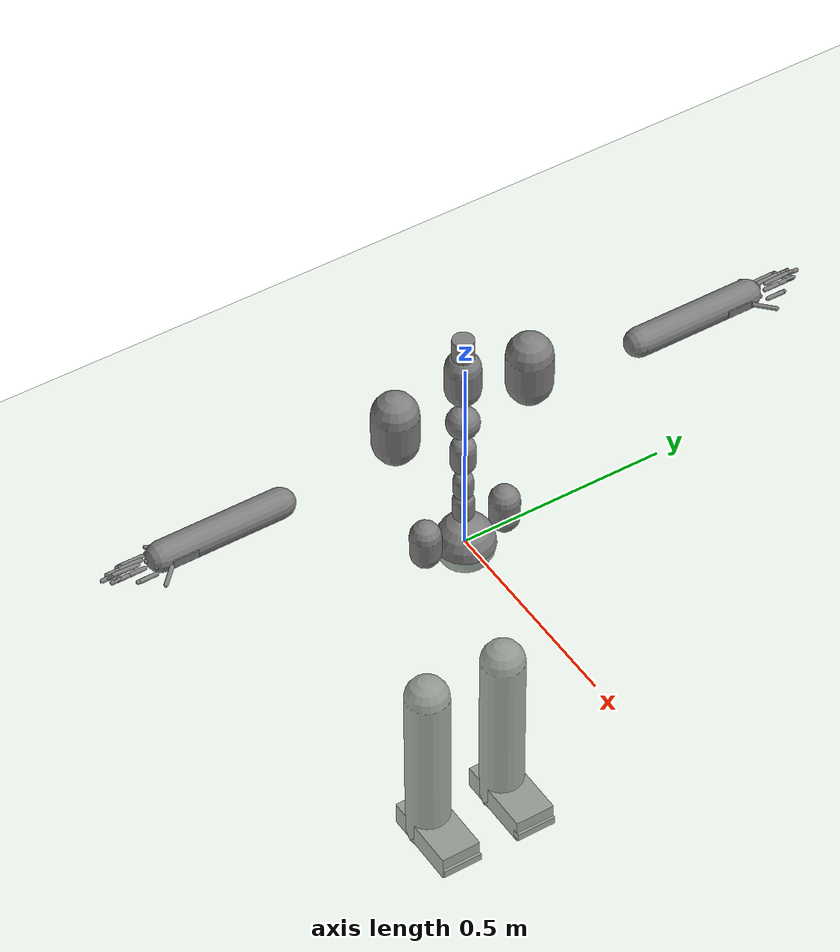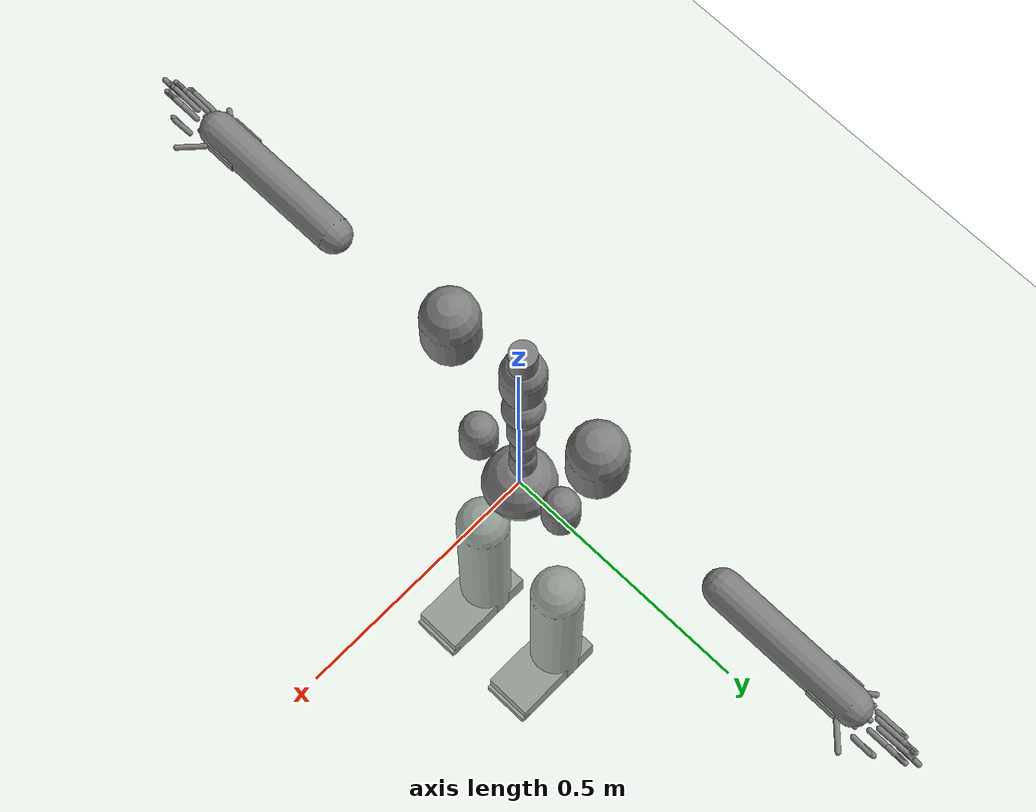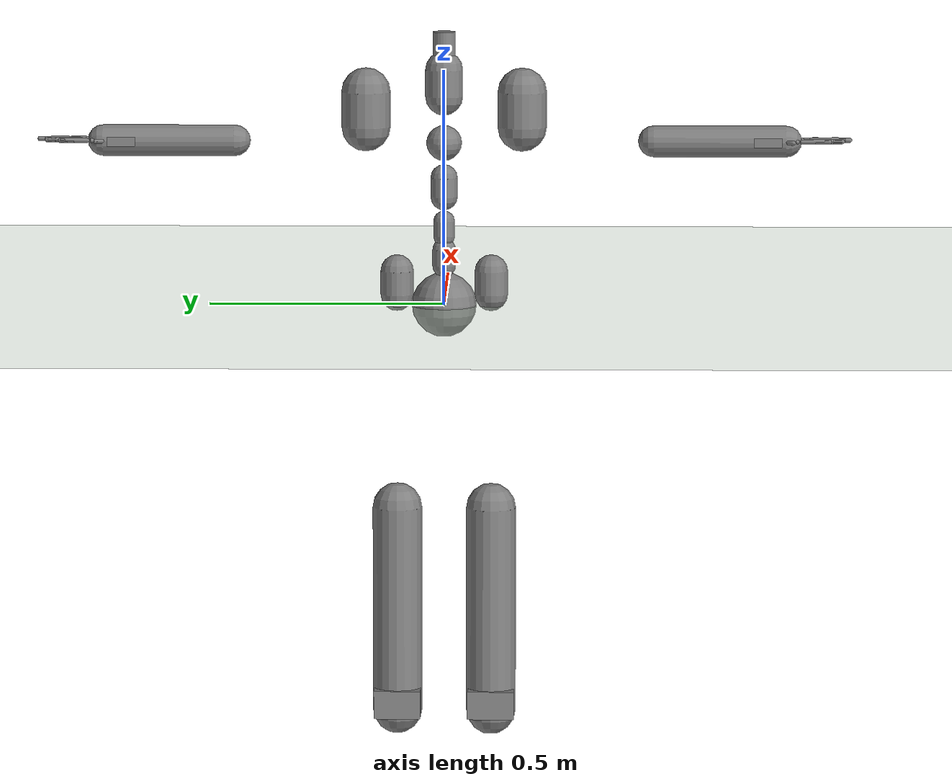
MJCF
<?xml version="1.0" ?>
<mujoco model="humanoid">
  <compiler coordinate="local"/>
  <statistic extent="2" center="0 0 1"/>
  <option timestep="0.00555"/>
  <default>
    <motor ctrlrange="-1 1" ctrllimited="true"/>
    <geom type="capsule" condim="1" friction="1.0 0.05 0.05" solimp=".9 .99 .003" solref=".015 1"/>
    <joint type="hinge" damping="0.1" stiffness="5" armature=".007" limited="true" solimplimit="0 .99 .01"/>
    <site size=".04" group="3"/>
  </default>
  <asset>
    <texture type="skybox" builtin="gradient" rgb1=".4 .5 .6" rgb2="0 0 0" width="100" height="100"/>
    <texture builtin="flat" height="1278" mark="cross" markrgb="1 1 1" name="texgeom" random="0.01" rgb1="0.8 0.6 0.4" rgb2="0.8 0.6 0.4" type="cube" width="127"/>
    <texture builtin="checker" height="100" name="texplane" rgb1="0 0 0" rgb2="0.8 0.8 0.8" type="2d" width="100"/>
    <material name="MatPlane" reflectance="0.5" shininess="1" specular="1" texrepeat="60 60" texture="texplane"/>
    <material name="geom" texture="texgeom" texuniform="true"/>
  </asset>
  <worldbody>
    <light cutoff="100" diffuse="1 1 1" dir="-0 0 -1.3" directional="true" exponent="1" pos="0 0 1.3" specular=".1 .1 .1"/>
    <geom conaffinity="1" condim="3" name="floor" pos="0 0 0" rgba="0.8 0.9 0.8 1" size="100 100 .2" type="plane" material="MatPlane"/>
    <body name="pHipOrigin" pos="0 0 0">
      <freejoint name="pHipOrigin"/>
      <geom type="sphere" contype="1" conaffinity="1" density="4629.6296296296305" size="0.06882" pos="0.0000 0.0000 -0.0000"/>
      <body name="jL5S1" pos="-0.00775529 0 0.06979742">
        <geom type="capsule" contype="1" conaffinity="1" density="1000" fromto="0 0 0.01405 0 0 0.04916" size="0.02458"/>
        <joint name="jL5S1_x" type="hinge" pos="0 0 0" axis="1 0 0" stiffness="500" damping="500" armature="0.02" range="-180.0000 180.0000"/>
        <joint name="jL5S1_y" type="hinge" pos="0 0 0" axis="0 1 0" stiffness="500" damping="500" armature="0.02" range="-180.0000 180.0000"/>
        <joint name="jL5S1_z" type="hinge" pos="0 0 0" axis="0 0 1" stiffness="500" damping="500" armature="0.02" range="-180.0000 180.0000"/>
        <body name="jL4L3" pos="0 0 0.06443585">
          <geom type="capsule" contype="1" conaffinity="1" density="1000" fromto="0 0 0.01289 0 0 0.04511" size="0.02255"/>
          <joint name="jL4L3_x" type="hinge" pos="0 0 0" axis="1 0 0" stiffness="500" damping="500" armature="0.02" range="-180.0000 180.0000"/>
          <joint name="jL4L3_y" type="hinge" pos="0 0 0" axis="0 1 0" stiffness="500" damping="500" armature="0.02" range="-180.0000 180.0000"/>
          <joint name="jL4L3_z" type="hinge" pos="0 0 0" axis="0 0 1" stiffness="500" damping="500" armature="0.02" range="-180.0000 180.0000"/>
          <body name="jL1T12" pos="-0.00062802 0 0.08140251">
            <geom type="capsule" contype="1" conaffinity="1" density="1000" fromto="0 0 0.01628 0 0 0.05698" size="0.02849"/>
            <joint name="jL1T12_x" type="hinge" pos="0 0 0" axis="1 0 0" stiffness="500" damping="500" armature="0.02" range="-180.0000 180.0000"/>
            <joint name="jL1T12_y" type="hinge" pos="0 0 0" axis="0 1 0" stiffness="500" damping="500" armature="0.02" range="-180.0000 180.0000"/>
            <joint name="jL1T12_z" type="hinge" pos="0 0 0" axis="0 0 1" stiffness="500" damping="500" armature="0.02" range="-180.0000 180.0000"/>
            <body name="jT9T8" pos="-0.00072556 0 0.09386295">
              <geom type="sphere" contype="1" conaffinity="1" density="1000" size="0.03755" pos="0.000 0.0000 0.037546"/>
              <joint name="jT9T8_x" type="hinge" pos="0 0 0" axis="1 0 0" stiffness="500" damping="500" armature="0.02" range="-180.0000 180.0000"/>
              <joint name="jT9T8_y" type="hinge" pos="0 0 0" axis="0 1 0" stiffness="500" damping="500" armature="0.02" range="-180.0000 180.0000"/>
              <joint name="jT9T8_z" type="hinge" pos="0 0 0" axis="0 0 1" stiffness="500" damping="500" armature="0.02" range="-180.0000 180.0000"/>
              <body name="jT1C7" pos="0 0 0.11363700">
                <geom type="capsule" contype="1" conaffinity="1" density="1000" fromto="0 0 0.02273 0 0 0.07955" size="0.03977"/>
                <joint name="jT1C7_x" type="hinge" pos="0 0 0" axis="1 0 0" stiffness="500" damping="500" armature="0.02" range="-180.0000 180.0000"/>
                <joint name="jT1C7_y" type="hinge" pos="0 0 0" axis="0 1 0" stiffness="500" damping="500" armature="0.02" range="-180.0000 180.0000"/>
                <joint name="jT1C7_z" type="hinge" pos="0 0 0" axis="0 0 1" stiffness="500" damping="500" armature="0.02" range="-180.0000 180.0000"/>
                <body name="jC1Head" pos="0.00094772 0 0.08033117">
                  <geom type="cylinder" contype="1" conaffinity="1" density="1000" fromto="0 0 0 0 0 0.08034" size="0.02410"/>
                  <joint name="jC1Head_x" type="hinge" pos="0 0 0" axis="1 0 0" stiffness="500" damping="500" armature="0.02" range="-180.0000 180.0000"/>
                  <joint name="jC1Head_y" type="hinge" pos="0 0 0" axis="0 1 0" stiffness="500" damping="500" armature="0.02" range="-180.0000 180.0000"/>
                  <joint name="jC1Head_z" type="hinge" pos="0 0 0" axis="0 0 1" stiffness="500" damping="500" armature="0.02" range="-180.0000 180.0000"/>
                </body>
              </body>
              <body name="jRightT4Shoulder" pos="0 -0.01725653 0.04207522">
                <geom type="sphere" contype="1" conaffinity="1" density="1000" size="0.01819" pos="0 0 0"/>
                <joint name="jRightT4Shoulder_x" type="hinge" pos="0 0 0" axis="1 0 0" stiffness="500" damping="500" armature="0.02" range="-180.0000 180.0000"/>
                <joint name="jRightT4Shoulder_y" type="hinge" pos="0 0 0" axis="0 1 0" stiffness="500" damping="500" armature="0.02" range="-180.0000 180.0000"/>
                <joint name="jRightT4Shoulder_z" type="hinge" pos="0 0 0" axis="0 0 1" stiffness="500" damping="500" armature="0.02" range="-180.0000 180.0000"/>
                <body name="jRightShoulder" pos="0 -0.14852068 0">
                  <geom type="capsule" contype="1" conaffinity="1" density="1000" fromto="0 0 0.02970 0 0 0.10396" size="0.05198"/>
                  <joint name="jRightShoulder_x" type="hinge" pos="0 0 0" axis="1 0 0" stiffness="500" damping="500" armature="0.02" range="-180.0000 180.0000"/>
                  <joint name="jRightShoulder_y" type="hinge" pos="0 0 0" axis="0 1 0" stiffness="500" damping="500" armature="0.02" range="-180.0000 180.0000"/>
                  <joint name="jRightShoulder_z" type="hinge" pos="0 0 0" axis="0 0 1" stiffness="500" damping="500" armature="0.02" range="-180.0000 180.0000"/>
                  <body name="jRightElbow" pos="0 -0.28001967 0">
                    <geom type="capsule" contype="1" conaffinity="1" density="1000" fromto="0 0 0 0.00000000 -0.28001967 0.00000000" size="0.03360"/>
                    <joint name="jRightElbow_x" type="hinge" pos="0 0 0" axis="1 0 0" stiffness="500" damping="500" armature="0.02" range="-180.0000 180.0000"/>
                    <joint name="jRightElbow_y" type="hinge" pos="0 0 0" axis="0 1 0" stiffness="500" damping="500" armature="0.02" range="-180.0000 180.0000"/>
                    <joint name="jRightElbow_z" type="hinge" pos="0 0 0" axis="0 0 1" stiffness="500" damping="500" armature="0.02" range="-180.0000 180.0000"/>
                    <body name="jRightWrist" pos="0.00009688 -0.24071392 0">
                      <geom density="1000" type="box" pos="0 0 0" size="0.035 0.03 0.01" quat="1.0000 0.0000 0.0000 0.0000"/>
                      <joint name="jRightWrist_x" type="hinge" pos="0 0 0" axis="1 0 0" stiffness="500" damping="500" armature="0.02" range="-180.0000 180.0000"/>
                      <joint name="jRightWrist_y" type="hinge" pos="0 0 0" axis="0 1 0" stiffness="500" damping="500" armature="0.02" range="-180.0000 180.0000"/>
                      <joint name="jRightWrist_z" type="hinge" pos="0 0 0" axis="0 0 1" stiffness="500" damping="500" armature="0.02" range="-180.0000 180.0000"/>
                      <body name="jRightFirstCMC" pos="0.03610712 -0.03461070 -0.00163515">
                        <geom type="capsule" contype="1" conaffinity="1" density="1000" fromto="0 0 0 0.03610712 -0.03461070 -0.00163515" size="0.005"/>
                        <joint name="jRightFirstCMC_x" type="hinge" pos="0 0 0" axis="1 0 0" stiffness="500" damping="500" armature="0.02" range="-180.0000 180.0000"/>
                        <joint name="jRightFirstCMC_y" type="hinge" pos="0 0 0" axis="0 1 0" stiffness="500" damping="500" armature="0.02" range="-180.0000 180.0000"/>
                        <joint name="jRightFirstCMC_z" type="hinge" pos="0 0 0" axis="0 0 1" stiffness="500" damping="500" armature="0.02" range="-180.0000 180.0000"/>
                        <body name="jRightFirstMCP" pos="0.00129353 -0.03650270 0.00077130">
                          <geom type="capsule" contype="1" conaffinity="1" density="1000" fromto="0 0 0 0.00129353 -0.03650270 0.00077130" size="0.005"/>
                          <joint name="jRightFirstMCP_x" type="hinge" pos="0 0 0" axis="1 0 0" stiffness="500" damping="500" armature="0.02" range="-180.0000 180.0000"/>
                          <joint name="jRightFirstMCP_y" type="hinge" pos="0 0 0" axis="0 1 0" stiffness="500" damping="500" armature="0.02" range="-180.0000 180.0000"/>
                          <joint name="jRightFirstMCP_z" type="hinge" pos="0 0 0" axis="0 0 1" stiffness="500" damping="500" armature="0.02" range="-180.0000 180.0000"/>
                          <body name="jRightIP" pos="0 -0.02113471 0">
                            <geom type="capsule" contype="1" conaffinity="1" density="1000" fromto="0 0 0 0.00000000 -0.02113471 0.00000000" size="0.005"/>
                            <joint name="jRightIP_x" type="hinge" pos="0 0 0" axis="1 0 0" stiffness="500" damping="500" armature="0.02" range="-180.0000 180.0000"/>
                            <joint name="jRightIP_y" type="hinge" pos="0 0 0" axis="0 1 0" stiffness="500" damping="500" armature="0.02" range="-180.0000 180.0000"/>
                            <joint name="jRightIP_z" type="hinge" pos="0 0 0" axis="0 0 1" stiffness="500" damping="500" armature="0.02" range="-180.0000 180.0000"/>
                          </body>
                        </body>
                      </body>
                      <body name="jRightSecondCMC" pos="0.01064093 -0.03108943 -0.00054228">
                        <geom type="capsule" contype="1" conaffinity="1" density="1000" fromto="0 0 0 0.01064093 -0.03108943 -0.00054228" size="0.005"/>
                        <joint name="jRightSecondCMC_x" type="hinge" pos="0 0 0" axis="1 0 0" stiffness="500" damping="500" armature="0.02" range="-180.0000 180.0000"/>
                        <joint name="jRightSecondCMC_y" type="hinge" pos="0 0 0" axis="0 1 0" stiffness="500" damping="500" armature="0.02" range="-180.0000 180.0000"/>
                        <joint name="jRightSecondCMC_z" type="hinge" pos="0 0 0" axis="0 0 1" stiffness="500" damping="500" armature="0.02" range="-180.0000 180.0000"/>
                        <body name="jRightSecondMCP" pos="-0.00032480 -0.05180347 -0.00053737">
                          <geom type="capsule" contype="1" conaffinity="1" density="1000" fromto="0 0 0 -0.00032480 -0.05180347 -0.00053737" size="0.005"/>
                          <joint name="jRightSecondMCP_x" type="hinge" pos="0 0 0" axis="1 0 0" stiffness="500" damping="500" armature="0.02" range="-180.0000 180.0000"/>
                          <joint name="jRightSecondMCP_y" type="hinge" pos="0 0 0" axis="0 1 0" stiffness="500" damping="500" armature="0.02" range="-180.0000 180.0000"/>
                          <joint name="jRightSecondMCP_z" type="hinge" pos="0 0 0" axis="0 0 1" stiffness="500" damping="500" armature="0.02" range="-180.0000 180.0000"/>
                          <body name="jRightSecondPIP" pos="0 -0.03741081 0">
                            <geom type="capsule" contype="1" conaffinity="1" density="1000" fromto="0 0 0 0.00000000 -0.03741081 0.00000000" size="0.005"/>
                            <joint name="jRightSecondPIP_x" type="hinge" pos="0 0 0" axis="1 0 0" stiffness="500" damping="500" armature="0.02" range="-180.0000 180.0000"/>
                            <joint name="jRightSecondPIP_y" type="hinge" pos="0 0 0" axis="0 1 0" stiffness="500" damping="500" armature="0.02" range="-180.0000 180.0000"/>
                            <joint name="jRightSecondPIP_z" type="hinge" pos="0 0 0" axis="0 0 1" stiffness="500" damping="500" armature="0.02" range="-180.0000 180.0000"/>
                            <body name="jRightSecondDIP" pos="0 -0.01784215 0">
                              <geom type="capsule" contype="1" conaffinity="1" density="1000" fromto="0 0 0 0.00000000 -0.01784215 0.00000000" size="0.005"/>
                              <joint name="jRightSecondDIP_x" type="hinge" pos="0 0 0" axis="1 0 0" stiffness="500" damping="500" armature="0.02" range="-180.0000 180.0000"/>
                              <joint name="jRightSecondDIP_y" type="hinge" pos="0 0 0" axis="0 1 0" stiffness="500" damping="500" armature="0.02" range="-180.0000 180.0000"/>
                              <joint name="jRightSecondDIP_z" type="hinge" pos="0 0 0" axis="0 0 1" stiffness="500" damping="500" armature="0.02" range="-180.0000 180.0000"/>
                            </body>
                          </body>
                        </body>
                      </body>
                      <body name="jRightThirdCMC" pos="-0.00067498 -0.03650114 0.00153456">
                        <geom type="capsule" contype="1" conaffinity="1" density="1000" fromto="0 0 0 -0.00067498 -0.03650114 0.00153456" size="0.005"/>
                        <joint name="jRightThirdCMC_x" type="hinge" pos="0 0 0" axis="1 0 0" stiffness="500" damping="500" armature="0.02" range="-180.0000 180.0000"/>
                        <joint name="jRightThirdCMC_y" type="hinge" pos="0 0 0" axis="0 1 0" stiffness="500" damping="500" armature="0.02" range="-180.0000 180.0000"/>
                        <joint name="jRightThirdCMC_z" type="hinge" pos="0 0 0" axis="0 0 1" stiffness="500" damping="500" armature="0.02" range="-180.0000 180.0000"/>
                        <body name="jRightThirdMCP" pos="-0.00067462 -0.05589217 0.00152061">
                          <geom type="capsule" contype="1" conaffinity="1" density="1000" fromto="0 0 0 -0.00067462 -0.05589217 0.00152061" size="0.005"/>
                          <joint name="jRightThirdMCP_x" type="hinge" pos="0 0 0" axis="1 0 0" stiffness="500" damping="500" armature="0.02" range="-180.0000 180.0000"/>
                          <joint name="jRightThirdMCP_y" type="hinge" pos="0 0 0" axis="0 1 0" stiffness="500" damping="500" armature="0.02" range="-180.0000 180.0000"/>
                          <joint name="jRightThirdMCP_z" type="hinge" pos="0 0 0" axis="0 0 1" stiffness="500" damping="500" armature="0.02" range="-180.0000 180.0000"/>
                          <body name="jRightThirdPIP" pos="0 -0.04103011 0">
                            <geom type="capsule" contype="1" conaffinity="1" density="1000" fromto="0 0 0 0.00000000 -0.04103011 0.00000000" size="0.005"/>
                            <joint name="jRightThirdPIP_x" type="hinge" pos="0 0 0" axis="1 0 0" stiffness="500" damping="500" armature="0.02" range="-180.0000 180.0000"/>
                            <joint name="jRightThirdPIP_y" type="hinge" pos="0 0 0" axis="0 1 0" stiffness="500" damping="500" armature="0.02" range="-180.0000 180.0000"/>
                            <joint name="jRightThirdPIP_z" type="hinge" pos="0 0 0" axis="0 0 1" stiffness="500" damping="500" armature="0.02" range="-180.0000 180.0000"/>
                            <body name="jRightThirdDIP" pos="0 -0.01556256 0">
                              <geom type="capsule" contype="1" conaffinity="1" density="1000" fromto="0 0 0 0.00000000 -0.01556256 0.00000000" size="0.005"/>
                              <joint name="jRightThirdDIP_x" type="hinge" pos="0 0 0" axis="1 0 0" stiffness="500" damping="500" armature="0.02" range="-180.0000 180.0000"/>
                              <joint name="jRightThirdDIP_y" type="hinge" pos="0 0 0" axis="0 1 0" stiffness="500" damping="500" armature="0.02" range="-180.0000 180.0000"/>
                              <joint name="jRightThirdDIP_z" type="hinge" pos="0 0 0" axis="0 0 1" stiffness="500" damping="500" armature="0.02" range="-180.0000 180.0000"/>
                            </body>
                          </body>
                        </body>
                      </body>
                      <body name="jRightFourthCMC" pos="-0.01114441 -0.03103902 0.00073061">
                        <geom type="capsule" contype="1" conaffinity="1" density="1000" fromto="0 0 0 -0.01114441 -0.03103902 0.00073061" size="0.005"/>
                        <joint name="jRightFourthCMC_x" type="hinge" pos="0 0 0" axis="1 0 0" stiffness="500" damping="500" armature="0.02" range="-180.0000 180.0000"/>
                        <joint name="jRightFourthCMC_y" type="hinge" pos="0 0 0" axis="0 1 0" stiffness="500" damping="500" armature="0.02" range="-180.0000 180.0000"/>
                        <joint name="jRightFourthCMC_z" type="hinge" pos="0 0 0" axis="0 0 1" stiffness="500" damping="500" armature="0.02" range="-180.0000 180.0000"/>
                        <body name="jRightFourthMCP" pos="-0.00035679 -0.04890116 0.00076828">
                          <geom type="capsule" contype="1" conaffinity="1" density="1000" fromto="0 0 0 -0.00035679 -0.04890116 0.00076828" size="0.005"/>
                          <joint name="jRightFourthMCP_x" type="hinge" pos="0 0 0" axis="1 0 0" stiffness="500" damping="500" armature="0.02" range="-180.0000 180.0000"/>
                          <joint name="jRightFourthMCP_y" type="hinge" pos="0 0 0" axis="0 1 0" stiffness="500" damping="500" armature="0.02" range="-180.0000 180.0000"/>
                          <joint name="jRightFourthMCP_z" type="hinge" pos="0 0 0" axis="0 0 1" stiffness="500" damping="500" armature="0.02" range="-180.0000 180.0000"/>
                          <body name="jRightFourthPIP" pos="0 -0.03886054 0">
                            <geom type="capsule" contype="1" conaffinity="1" density="1000" fromto="0 0 0 0.00000000 -0.03886054 0.00000000" size="0.005"/>
                            <joint name="jRightFourthPIP_x" type="hinge" pos="0 0 0" axis="1 0 0" stiffness="500" damping="500" armature="0.02" range="-180.0000 180.0000"/>
                            <joint name="jRightFourthPIP_y" type="hinge" pos="0 0 0" axis="0 1 0" stiffness="500" damping="500" armature="0.02" range="-180.0000 180.0000"/>
                            <joint name="jRightFourthPIP_z" type="hinge" pos="0 0 0" axis="0 0 1" stiffness="500" damping="500" armature="0.02" range="-180.0000 180.0000"/>
                            <body name="jRightFourthDIP" pos="0 -0.01976538 0">
                              <geom type="capsule" contype="1" conaffinity="1" density="1000" fromto="0 0 0 0.00000000 -0.01976538 0.00000000" size="0.005"/>
                              <joint name="jRightFourthDIP_x" type="hinge" pos="0 0 0" axis="1 0 0" stiffness="500" damping="500" armature="0.02" range="-180.0000 180.0000"/>
                              <joint name="jRightFourthDIP_y" type="hinge" pos="0 0 0" axis="0 1 0" stiffness="500" damping="500" armature="0.02" range="-180.0000 180.0000"/>
                              <joint name="jRightFourthDIP_z" type="hinge" pos="0 0 0" axis="0 0 1" stiffness="500" damping="500" armature="0.02" range="-180.0000 180.0000"/>
                            </body>
                          </body>
                        </body>
                      </body>
                      <body name="jRightFifthCMC" pos="-0.01930970 -0.02690587 0.00053077">
                        <geom type="capsule" contype="1" conaffinity="1" density="1000" fromto="0 0 0 -0.01930970 -0.02690587 0.00053077" size="0.005"/>
                        <joint name="jRightFifthCMC_x" type="hinge" pos="0 0 0" axis="1 0 0" stiffness="500" damping="500" armature="0.02" range="-180.0000 180.0000"/>
                        <joint name="jRightFifthCMC_y" type="hinge" pos="0 0 0" axis="0 1 0" stiffness="500" damping="500" armature="0.02" range="-180.0000 180.0000"/>
                        <joint name="jRightFifthCMC_z" type="hinge" pos="0 0 0" axis="0 0 1" stiffness="500" damping="500" armature="0.02" range="-180.0000 180.0000"/>
                        <body name="jRightFifthMCP" pos="-0.00000683 -0.04621731 0.00063601">
                          <geom type="capsule" contype="1" conaffinity="1" density="1000" fromto="0 0 0 -0.00000683 -0.04621731 0.00063601" size="0.005"/>
                          <joint name="jRightFifthMCP_x" type="hinge" pos="0 0 0" axis="1 0 0" stiffness="500" damping="500" armature="0.02" range="-180.0000 180.0000"/>
                          <joint name="jRightFifthMCP_y" type="hinge" pos="0 0 0" axis="0 1 0" stiffness="500" damping="500" armature="0.02" range="-180.0000 180.0000"/>
                          <joint name="jRightFifthMCP_z" type="hinge" pos="0 0 0" axis="0 0 1" stiffness="500" damping="500" armature="0.02" range="-180.0000 180.0000"/>
                          <body name="jRightFifthPIP" pos="0 -0.02862551 0">
                            <geom type="capsule" contype="1" conaffinity="1" density="1000" fromto="0 0 0 0.00000000 -0.02862551 0.00000000" size="0.005"/>
                            <joint name="jRightFifthPIP_x" type="hinge" pos="0 0 0" axis="1 0 0" stiffness="500" damping="500" armature="0.02" range="-180.0000 180.0000"/>
                            <joint name="jRightFifthPIP_y" type="hinge" pos="0 0 0" axis="0 1 0" stiffness="500" damping="500" armature="0.02" range="-180.0000 180.0000"/>
                            <joint name="jRightFifthPIP_z" type="hinge" pos="0 0 0" axis="0 0 1" stiffness="500" damping="500" armature="0.02" range="-180.0000 180.0000"/>
                            <body name="jRightFifthDIP" pos="0 -0.01408423 0">
                              <geom type="capsule" contype="1" conaffinity="1" density="1000" fromto="0 0 0 0.00000000 -0.01408423 0.00000000" size="0.005"/>
                              <joint name="jRightFifthDIP_x" type="hinge" pos="0 0 0" axis="1 0 0" stiffness="500" damping="500" armature="0.02" range="-180.0000 180.0000"/>
                              <joint name="jRightFifthDIP_y" type="hinge" pos="0 0 0" axis="0 1 0" stiffness="500" damping="500" armature="0.02" range="-180.0000 180.0000"/>
                              <joint name="jRightFifthDIP_z" type="hinge" pos="0 0 0" axis="0 0 1" stiffness="500" damping="500" armature="0.02" range="-180.0000 180.0000"/>
                            </body>
                          </body>
                        </body>
                      </body>
                    </body>
                  </body>
                </body>
              </body>
              <body name="jLeftT4Shoulder" pos="0 0.01732343 0.04223831">
                <geom type="sphere" contype="1" conaffinity="1" density="1000" size="0.01826" pos="0 0 0"/>
                <joint name="jLeftT4Shoulder_x" type="hinge" pos="0 0 0" axis="1 0 0" stiffness="500" damping="500" armature="0.02" range="-180.0000 180.0000"/>
                <joint name="jLeftT4Shoulder_y" type="hinge" pos="0 0 0" axis="0 1 0" stiffness="500" damping="500" armature="0.02" range="-180.0000 180.0000"/>
                <joint name="jLeftT4Shoulder_z" type="hinge" pos="0 0 0" axis="0 0 1" stiffness="500" damping="500" armature="0.02" range="-180.0000 180.0000"/>
                <body name="jLeftShoulder" pos="0 0.14849134 0">
                  <geom type="capsule" contype="1" conaffinity="1" density="1000" fromto="0 0 0.02970 0 0 0.10394" size="0.05197"/>
                  <joint name="jLeftShoulder_x" type="hinge" pos="0 0 0" axis="1 0 0" stiffness="500" damping="500" armature="0.02" range="-180.0000 180.0000"/>
                  <joint name="jLeftShoulder_y" type="hinge" pos="0 0 0" axis="0 1 0" stiffness="500" damping="500" armature="0.02" range="-180.0000 180.0000"/>
                  <joint name="jLeftShoulder_z" type="hinge" pos="0 0 0" axis="0 0 1" stiffness="500" damping="500" armature="0.02" range="-180.0000 180.0000"/>
                  <body name="jLeftElbow" pos="0 0.27901274 0">
                    <geom type="capsule" contype="1" conaffinity="1" density="1000" fromto="0 0 0 0.00000000 0.27901274 0.00000000" size="0.03348"/>
                    <joint name="jLeftElbow_x" type="hinge" pos="0 0 0" axis="1 0 0" stiffness="500" damping="500" armature="0.02" range="-180.0000 180.0000"/>
                    <joint name="jLeftElbow_y" type="hinge" pos="0 0 0" axis="0 1 0" stiffness="500" damping="500" armature="0.02" range="-180.0000 180.0000"/>
                    <joint name="jLeftElbow_z" type="hinge" pos="0 0 0" axis="0 0 1" stiffness="500" damping="500" armature="0.02" range="-180.0000 180.0000"/>
                    <body name="jLeftWrist" pos="0.00009663 0.24008176 0">
                      <geom density="1000" type="box" pos="0 0 0" size="0.035 0.03 0.01" quat="1.0000 0.0000 0.0000 0.0000"/>
                      <joint name="jLeftWrist_x" type="hinge" pos="0 0 0" axis="1 0 0" stiffness="500" damping="500" armature="0.02" range="-180.0000 180.0000"/>
                      <joint name="jLeftWrist_y" type="hinge" pos="0 0 0" axis="0 1 0" stiffness="500" damping="500" armature="0.02" range="-180.0000 180.0000"/>
                      <joint name="jLeftWrist_z" type="hinge" pos="0 0 0" axis="0 0 1" stiffness="500" damping="500" armature="0.02" range="-180.0000 180.0000"/>
                      <body name="jLeftFirstCMC" pos="0.03534037 0.03542382 -0.00158172">
                        <geom type="capsule" contype="1" conaffinity="1" density="1000" fromto="0 0 0 0.03534037 0.03542382 -0.00158172" size="0.005"/>
                        <joint name="jLeftFirstCMC_x" type="hinge" pos="0 0 0" axis="1 0 0" stiffness="500" damping="500" armature="0.02" range="-180.0000 180.0000"/>
                        <joint name="jLeftFirstCMC_y" type="hinge" pos="0 0 0" axis="0 1 0" stiffness="500" damping="500" armature="0.02" range="-180.0000 180.0000"/>
                        <joint name="jLeftFirstCMC_z" type="hinge" pos="0 0 0" axis="0 0 1" stiffness="500" damping="500" armature="0.02" range="-180.0000 180.0000"/>
                        <body name="jLeftFirstMCP" pos="0.00128107 0.03650188 0.00075166">
                          <geom type="capsule" contype="1" conaffinity="1" density="1000" fromto="0 0 0 0.00128107 0.03650188 0.00075166" size="0.005"/>
                          <joint name="jLeftFirstMCP_x" type="hinge" pos="0 0 0" axis="1 0 0" stiffness="500" damping="500" armature="0.02" range="-180.0000 180.0000"/>
                          <joint name="jLeftFirstMCP_y" type="hinge" pos="0 0 0" axis="0 1 0" stiffness="500" damping="500" armature="0.02" range="-180.0000 180.0000"/>
                          <joint name="jLeftFirstMCP_z" type="hinge" pos="0 0 0" axis="0 0 1" stiffness="500" damping="500" armature="0.02" range="-180.0000 180.0000"/>
                          <body name="jLeftIP" pos="0 0.02113471 0">
                            <geom type="capsule" contype="1" conaffinity="1" density="1000" fromto="0 0 0 0.00000000 0.02113471 0.00000000" size="0.005"/>
                            <joint name="jLeftIP_x" type="hinge" pos="0 0 0" axis="1 0 0" stiffness="500" damping="500" armature="0.02" range="-180.0000 180.0000"/>
                            <joint name="jLeftIP_y" type="hinge" pos="0 0 0" axis="0 1 0" stiffness="500" damping="500" armature="0.02" range="-180.0000 180.0000"/>
                            <joint name="jLeftIP_z" type="hinge" pos="0 0 0" axis="0 0 1" stiffness="500" damping="500" armature="0.02" range="-180.0000 180.0000"/>
                          </body>
                        </body>
                      </body>
                      <body name="jLeftSecondCMC" pos="0.01076350 0.03103223 -0.00054675">
                        <geom type="capsule" contype="1" conaffinity="1" density="1000" fromto="0 0 0 0.01076350 0.03103223 -0.00054675" size="0.005"/>
                        <joint name="jLeftSecondCMC_x" type="hinge" pos="0 0 0" axis="1 0 0" stiffness="500" damping="500" armature="0.02" range="-180.0000 180.0000"/>
                        <joint name="jLeftSecondCMC_y" type="hinge" pos="0 0 0" axis="0 1 0" stiffness="500" damping="500" armature="0.02" range="-180.0000 180.0000"/>
                        <joint name="jLeftSecondCMC_z" type="hinge" pos="0 0 0" axis="0 0 1" stiffness="500" damping="500" armature="0.02" range="-180.0000 180.0000"/>
                        <body name="jLeftSecondMCP" pos="-0.00028321 0.05180454 -0.00054401">
                          <geom type="capsule" contype="1" conaffinity="1" density="1000" fromto="0 0 0 -0.00028321 0.05180454 -0.00054401" size="0.005"/>
                          <joint name="jLeftSecondMCP_x" type="hinge" pos="0 0 0" axis="1 0 0" stiffness="500" damping="500" armature="0.02" range="-180.0000 180.0000"/>
                          <joint name="jLeftSecondMCP_y" type="hinge" pos="0 0 0" axis="0 1 0" stiffness="500" damping="500" armature="0.02" range="-180.0000 180.0000"/>
                          <joint name="jLeftSecondMCP_z" type="hinge" pos="0 0 0" axis="0 0 1" stiffness="500" damping="500" armature="0.02" range="-180.0000 180.0000"/>
                          <body name="jLeftSecondPIP" pos="0 0.03741081 0">
                            <geom type="capsule" contype="1" conaffinity="1" density="1000" fromto="0 0 0 0.00000000 0.03741081 0.00000000" size="0.005"/>
                            <joint name="jLeftSecondPIP_x" type="hinge" pos="0 0 0" axis="1 0 0" stiffness="500" damping="500" armature="0.02" range="-180.0000 180.0000"/>
                            <joint name="jLeftSecondPIP_y" type="hinge" pos="0 0 0" axis="0 1 0" stiffness="500" damping="500" armature="0.02" range="-180.0000 180.0000"/>
                            <joint name="jLeftSecondPIP_z" type="hinge" pos="0 0 0" axis="0 0 1" stiffness="500" damping="500" armature="0.02" range="-180.0000 180.0000"/>
                            <body name="jLeftSecondDIP" pos="0 0.01784215 0">
                              <geom type="capsule" contype="1" conaffinity="1" density="1000" fromto="0 0 0 0.00000000 0.01784215 0.00000000" size="0.005"/>
                              <joint name="jLeftSecondDIP_x" type="hinge" pos="0 0 0" axis="1 0 0" stiffness="500" damping="500" armature="0.02" range="-180.0000 180.0000"/>
                              <joint name="jLeftSecondDIP_y" type="hinge" pos="0 0 0" axis="0 1 0" stiffness="500" damping="500" armature="0.02" range="-180.0000 180.0000"/>
                              <joint name="jLeftSecondDIP_z" type="hinge" pos="0 0 0" axis="0 0 1" stiffness="500" damping="500" armature="0.02" range="-180.0000 180.0000"/>
                            </body>
                          </body>
                        </body>
                      </body>
                      <body name="jLeftThirdCMC" pos="-0.00067894 0.03650441 0.00148341">
                        <geom type="capsule" contype="1" conaffinity="1" density="1000" fromto="0 0 0 -0.00067894 0.03650441 0.00148341" size="0.005"/>
                        <joint name="jLeftThirdCMC_x" type="hinge" pos="0 0 0" axis="1 0 0" stiffness="500" damping="500" armature="0.02" range="-180.0000 180.0000"/>
                        <joint name="jLeftThirdCMC_y" type="hinge" pos="0 0 0" axis="0 1 0" stiffness="500" damping="500" armature="0.02" range="-180.0000 180.0000"/>
                        <joint name="jLeftThirdCMC_z" type="hinge" pos="0 0 0" axis="0 0 1" stiffness="500" damping="500" armature="0.02" range="-180.0000 180.0000"/>
                        <body name="jLeftThirdMCP" pos="-0.00068006 0.05589325 0.00149004">
                          <geom type="capsule" contype="1" conaffinity="1" density="1000" fromto="0 0 0 -0.00068006 0.05589325 0.00149004" size="0.005"/>
                          <joint name="jLeftThirdMCP_x" type="hinge" pos="0 0 0" axis="1 0 0" stiffness="500" damping="500" armature="0.02" range="-180.0000 180.0000"/>
                          <joint name="jLeftThirdMCP_y" type="hinge" pos="0 0 0" axis="0 1 0" stiffness="500" damping="500" armature="0.02" range="-180.0000 180.0000"/>
                          <joint name="jLeftThirdMCP_z" type="hinge" pos="0 0 0" axis="0 0 1" stiffness="500" damping="500" armature="0.02" range="-180.0000 180.0000"/>
                          <body name="jLeftThirdPIP" pos="0 0.04103011 0">
                            <geom type="capsule" contype="1" conaffinity="1" density="1000" fromto="0 0 0 0.00000000 0.04103011 0.00000000" size="0.005"/>
                            <joint name="jLeftThirdPIP_x" type="hinge" pos="0 0 0" axis="1 0 0" stiffness="500" damping="500" armature="0.02" range="-180.0000 180.0000"/>
                            <joint name="jLeftThirdPIP_y" type="hinge" pos="0 0 0" axis="0 1 0" stiffness="500" damping="500" armature="0.02" range="-180.0000 180.0000"/>
                            <joint name="jLeftThirdPIP_z" type="hinge" pos="0 0 0" axis="0 0 1" stiffness="500" damping="500" armature="0.02" range="-180.0000 180.0000"/>
                            <body name="jLeftThirdDIP" pos="0 0.01556256 0">
                              <geom type="capsule" contype="1" conaffinity="1" density="1000" fromto="0 0 0 0.00000000 0.01556256 0.00000000" size="0.005"/>
                              <joint name="jLeftThirdDIP_x" type="hinge" pos="0 0 0" axis="1 0 0" stiffness="500" damping="500" armature="0.02" range="-180.0000 180.0000"/>
                              <joint name="jLeftThirdDIP_y" type="hinge" pos="0 0 0" axis="0 1 0" stiffness="500" damping="500" armature="0.02" range="-180.0000 180.0000"/>
                              <joint name="jLeftThirdDIP_z" type="hinge" pos="0 0 0" axis="0 0 1" stiffness="500" damping="500" armature="0.02" range="-180.0000 180.0000"/>
                            </body>
                          </body>
                        </body>
                      </body>
                      <body name="jLeftFourthCMC" pos="-0.01155333 0.03088025 0.00077992">
                        <geom type="capsule" contype="1" conaffinity="1" density="1000" fromto="0 0 0 -0.01155333 0.03088025 0.00077992" size="0.005"/>
                        <joint name="jLeftFourthCMC_x" type="hinge" pos="0 0 0" axis="1 0 0" stiffness="500" damping="500" armature="0.02" range="-180.0000 180.0000"/>
                        <joint name="jLeftFourthCMC_y" type="hinge" pos="0 0 0" axis="0 1 0" stiffness="500" damping="500" armature="0.02" range="-180.0000 180.0000"/>
                        <joint name="jLeftFourthCMC_z" type="hinge" pos="0 0 0" axis="0 0 1" stiffness="500" damping="500" armature="0.02" range="-180.0000 180.0000"/>
                        <body name="jLeftFourthMCP" pos="-0.00038369 0.04889836 0.00081254">
                          <geom type="capsule" contype="1" conaffinity="1" density="1000" fromto="0 0 0 -0.00038369 0.04889836 0.00081254" size="0.005"/>
                          <joint name="jLeftFourthMCP_x" type="hinge" pos="0 0 0" axis="1 0 0" stiffness="500" damping="500" armature="0.02" range="-180.0000 180.0000"/>
                          <joint name="jLeftFourthMCP_y" type="hinge" pos="0 0 0" axis="0 1 0" stiffness="500" damping="500" armature="0.02" range="-180.0000 180.0000"/>
                          <joint name="jLeftFourthMCP_z" type="hinge" pos="0 0 0" axis="0 0 1" stiffness="500" damping="500" armature="0.02" range="-180.0000 180.0000"/>
                          <body name="jLeftFourthPIP" pos="0 0.03886054 0">
                            <geom type="capsule" contype="1" conaffinity="1" density="1000" fromto="0 0 0 0.00000000 0.03886054 0.00000000" size="0.005"/>
                            <joint name="jLeftFourthPIP_x" type="hinge" pos="0 0 0" axis="1 0 0" stiffness="500" damping="500" armature="0.02" range="-180.0000 180.0000"/>
                            <joint name="jLeftFourthPIP_y" type="hinge" pos="0 0 0" axis="0 1 0" stiffness="500" damping="500" armature="0.02" range="-180.0000 180.0000"/>
                            <joint name="jLeftFourthPIP_z" type="hinge" pos="0 0 0" axis="0 0 1" stiffness="500" damping="500" armature="0.02" range="-180.0000 180.0000"/>
                            <body name="jLeftFourthDIP" pos="0 0.01976538 0">
                              <geom type="capsule" contype="1" conaffinity="1" density="1000" fromto="0 0 0 0.00000000 0.01976538 0.00000000" size="0.005"/>
                              <joint name="jLeftFourthDIP_x" type="hinge" pos="0 0 0" axis="1 0 0" stiffness="500" damping="500" armature="0.02" range="-180.0000 180.0000"/>
                              <joint name="jLeftFourthDIP_y" type="hinge" pos="0 0 0" axis="0 1 0" stiffness="500" damping="500" armature="0.02" range="-180.0000 180.0000"/>
                              <joint name="jLeftFourthDIP_z" type="hinge" pos="0 0 0" axis="0 0 1" stiffness="500" damping="500" armature="0.02" range="-180.0000 180.0000"/>
                            </body>
                          </body>
                        </body>
                      </body>
                      <body name="jLeftFifthCMC" pos="-0.01989467 0.02648051 0.00053930">
                        <geom type="capsule" contype="1" conaffinity="1" density="1000" fromto="0 0 0 -0.01989467 0.02648051 0.00053930" size="0.005"/>
                        <joint name="jLeftFifthCMC_x" type="hinge" pos="0 0 0" axis="1 0 0" stiffness="500" damping="500" armature="0.02" range="-180.0000 180.0000"/>
                        <joint name="jLeftFifthCMC_y" type="hinge" pos="0 0 0" axis="0 1 0" stiffness="500" damping="500" armature="0.02" range="-180.0000 180.0000"/>
                        <joint name="jLeftFifthCMC_z" type="hinge" pos="0 0 0" axis="0 0 1" stiffness="500" damping="500" armature="0.02" range="-180.0000 180.0000"/>
                        <body name="jLeftFifthMCP" pos="-0.00001311 0.04621605 0.00066502">
                          <geom type="capsule" contype="1" conaffinity="1" density="1000" fromto="0 0 0 -0.00001311 0.04621605 0.00066502" size="0.005"/>
                          <joint name="jLeftFifthMCP_x" type="hinge" pos="0 0 0" axis="1 0 0" stiffness="500" damping="500" armature="0.02" range="-180.0000 180.0000"/>
                          <joint name="jLeftFifthMCP_y" type="hinge" pos="0 0 0" axis="0 1 0" stiffness="500" damping="500" armature="0.02" range="-180.0000 180.0000"/>
                          <joint name="jLeftFifthMCP_z" type="hinge" pos="0 0 0" axis="0 0 1" stiffness="500" damping="500" armature="0.02" range="-180.0000 180.0000"/>
                          <body name="jLeftFifthPIP" pos="0 0.02862551 0">
                            <geom type="capsule" contype="1" conaffinity="1" density="1000" fromto="0 0 0 0.00000000 0.02862551 0.00000000" size="0.005"/>
                            <joint name="jLeftFifthPIP_x" type="hinge" pos="0 0 0" axis="1 0 0" stiffness="500" damping="500" armature="0.02" range="-180.0000 180.0000"/>
                            <joint name="jLeftFifthPIP_y" type="hinge" pos="0 0 0" axis="0 1 0" stiffness="500" damping="500" armature="0.02" range="-180.0000 180.0000"/>
                            <joint name="jLeftFifthPIP_z" type="hinge" pos="0 0 0" axis="0 0 1" stiffness="500" damping="500" armature="0.02" range="-180.0000 180.0000"/>
                            <body name="jLeftFifthDIP" pos="0 0.01408423 0">
                              <geom type="capsule" contype="1" conaffinity="1" density="1000" fromto="0 0 0 0.00000000 0.01408423 0.00000000" size="0.005"/>
                              <joint name="jLeftFifthDIP_x" type="hinge" pos="0 0 0" axis="1 0 0" stiffness="500" damping="500" armature="0.02" range="-180.0000 180.0000"/>
                              <joint name="jLeftFifthDIP_y" type="hinge" pos="0 0 0" axis="0 1 0" stiffness="500" damping="500" armature="0.02" range="-180.0000 180.0000"/>
                              <joint name="jLeftFifthDIP_z" type="hinge" pos="0 0 0" axis="0 0 1" stiffness="500" damping="500" armature="0.02" range="-180.0000 180.0000"/>
                            </body>
                          </body>
                        </body>
                      </body>
                    </body>
                  </body>
                </body>
              </body>
            </body>
          </body>
        </body>
      </body>
      <body name="jRightHip" pos="-0.00016939 -0.10052632 0.00152495">
        <geom type="capsule" contype="1" conaffinity="1" density="1000" fromto="0 0 0.02011 0 0 0.07038" size="0.03519"/>
        <joint name="jRightHip_x" type="hinge" pos="0 0 0" axis="1 0 0" stiffness="500" damping="500" armature="0.02" range="-180.0000 180.0000"/>
        <joint name="jRightHip_y" type="hinge" pos="0 0 0" axis="0 1 0" stiffness="500" damping="500" armature="0.02" range="-180.0000 180.0000"/>
        <joint name="jRightHip_z" type="hinge" pos="0 0 0" axis="0 0 1" stiffness="500" damping="500" armature="0.02" range="-180.0000 180.0000"/>
        <body name="jRightKnee" pos="0.00005256 0 -0.44081321">
          <geom type="capsule" contype="1" conaffinity="1" density="1000" fromto="0 0 0 0.00005256 0.00000000 -0.44081321" size="0.05290"/>
          <joint name="jRightKnee_x" type="hinge" pos="0 0 0" axis="1 0 0" stiffness="500" damping="500" armature="0.02" range="-180.0000 180.0000"/>
          <joint name="jRightKnee_y" type="hinge" pos="0 0 0" axis="0 1 0" stiffness="500" damping="500" armature="0.02" range="-180.0000 180.0000"/>
          <joint name="jRightKnee_z" type="hinge" pos="0 0 0" axis="0 0 1" stiffness="500" damping="500" armature="0.02" range="-180.0000 180.0000"/>
          <body name="jRightAnkle" pos="0.00044222 0 -0.39164376">
            <geom density="1000" type="box" pos="0.04 0. -0.03" size="0.1 0.05 0.03" quat="1.0 0 0 0"/>
            <joint name="jRightAnkle_x" type="hinge" pos="0 0 0" axis="1 0 0" stiffness="500" damping="500" armature="0.02" range="-180.0000 180.0000"/>
            <joint name="jRightAnkle_y" type="hinge" pos="0 0 0" axis="0 1 0" stiffness="500" damping="500" armature="0.02" range="-180.0000 180.0000"/>
            <joint name="jRightAnkle_z" type="hinge" pos="0 0 0" axis="0 0 1" stiffness="500" damping="500" armature="0.02" range="-180.0000 180.0000"/>
            <body name="jRightBallFoot" pos="0.13725058 0 -0.06296522">
              <geom density="1000" type="box" pos="0 0 0.02" size="0.01 0.05 0.01" quat="1.0 0 0 0"/>
              <joint name="jRightBallFoot_x" type="hinge" pos="0 0 0" axis="1 0 0" stiffness="500" damping="500" armature="0.02" range="-180.0000 180.0000"/>
              <joint name="jRightBallFoot_y" type="hinge" pos="0 0 0" axis="0 1 0" stiffness="500" damping="500" armature="0.02" range="-180.0000 180.0000"/>
              <joint name="jRightBallFoot_z" type="hinge" pos="0 0 0" axis="0 0 1" stiffness="500" damping="500" armature="0.02" range="-180.0000 180.0000"/>
            </body>
          </body>
        </body>
      </body>
      <body name="jLeftHip" pos="-0.00016692 0.10035472 0.00150222">
        <geom type="capsule" contype="1" conaffinity="1" density="1000" fromto="0 0 0.02007 0 0 0.07026" size="0.03513"/>
        <joint name="jLeftHip_x" type="hinge" pos="0 0 0" axis="1 0 0" stiffness="500" damping="500" armature="0.02" range="-180.0000 180.0000"/>
        <joint name="jLeftHip_y" type="hinge" pos="0 0 0" axis="0 1 0" stiffness="500" damping="500" armature="0.02" range="-180.0000 180.0000"/>
        <joint name="jLeftHip_z" type="hinge" pos="0 0 0" axis="0 0 1" stiffness="500" damping="500" armature="0.02" range="-180.0000 180.0000"/>
        <body name="jLeftKnee" pos="0.00005247 0 -0.44008323">
          <geom type="capsule" contype="1" conaffinity="1" density="1000" fromto="0 0 0 0.00005247 0.00000000 -0.44008323" size="0.05281"/>
          <joint name="jLeftKnee_x" type="hinge" pos="0 0 0" axis="1 0 0" stiffness="500" damping="500" armature="0.02" range="-180.0000 180.0000"/>
          <joint name="jLeftKnee_y" type="hinge" pos="0 0 0" axis="0 1 0" stiffness="500" damping="500" armature="0.02" range="-180.0000 180.0000"/>
          <joint name="jLeftKnee_z" type="hinge" pos="0 0 0" axis="0 0 1" stiffness="500" damping="500" armature="0.02" range="-180.0000 180.0000"/>
          <body name="jLeftAnkle" pos="0.00044222 0 -0.39164376">
            <geom density="1000" type="box" pos="0.04 0. -0.03" size="0.1 0.05 0.03" quat="1.0 0 0 0"/>
            <joint name="jLeftAnkle_x" type="hinge" pos="0 0 0" axis="1 0 0" stiffness="500" damping="500" armature="0.02" range="-180.0000 180.0000"/>
            <joint name="jLeftAnkle_y" type="hinge" pos="0 0 0" axis="0 1 0" stiffness="500" damping="500" armature="0.02" range="-180.0000 180.0000"/>
            <joint name="jLeftAnkle_z" type="hinge" pos="0 0 0" axis="0 0 1" stiffness="500" damping="500" armature="0.02" range="-180.0000 180.0000"/>
            <body name="jLeftBallFoot" pos="0.13725060 0 -0.06296523">
              <geom density="1000" type="box" pos="0 0 0.02" size="0.01 0.05 0.01" quat="1.0 0 0 0"/>
              <joint name="jLeftBallFoot_x" type="hinge" pos="0 0 0" axis="1 0 0" stiffness="500" damping="500" armature="0.02" range="-180.0000 180.0000"/>
              <joint name="jLeftBallFoot_y" type="hinge" pos="0 0 0" axis="0 1 0" stiffness="500" damping="500" armature="0.02" range="-180.0000 180.0000"/>
              <joint name="jLeftBallFoot_z" type="hinge" pos="0 0 0" axis="0 0 1" stiffness="500" damping="500" armature="0.02" range="-180.0000 180.0000"/>
            </body>
          </body>
        </body>
      </body>
    </body>
  </worldbody>
  <actuator>
    <motor name="jL5S1_x" joint="jL5S1_x" gear="500"/>
    <motor name="jL5S1_y" joint="jL5S1_y" gear="500"/>
    <motor name="jL5S1_z" joint="jL5S1_z" gear="500"/>
    <motor name="jL4L3_x" joint="jL4L3_x" gear="500"/>
    <motor name="jL4L3_y" joint="jL4L3_y" gear="500"/>
    <motor name="jL4L3_z" joint="jL4L3_z" gear="500"/>
    <motor name="jL1T12_x" joint="jL1T12_x" gear="500"/>
    <motor name="jL1T12_y" joint="jL1T12_y" gear="500"/>
    <motor name="jL1T12_z" joint="jL1T12_z" gear="500"/>
    <motor name="jT9T8_x" joint="jT9T8_x" gear="500"/>
    <motor name="jT9T8_y" joint="jT9T8_y" gear="500"/>
    <motor name="jT9T8_z" joint="jT9T8_z" gear="500"/>
    <motor name="jT1C7_x" joint="jT1C7_x" gear="500"/>
    <motor name="jT1C7_y" joint="jT1C7_y" gear="500"/>
    <motor name="jT1C7_z" joint="jT1C7_z" gear="500"/>
    <motor name="jC1Head_x" joint="jC1Head_x" gear="500"/>
    <motor name="jC1Head_y" joint="jC1Head_y" gear="500"/>
    <motor name="jC1Head_z" joint="jC1Head_z" gear="500"/>
    <motor name="jRightT4Shoulder_x" joint="jRightT4Shoulder_x" gear="500"/>
    <motor name="jRightT4Shoulder_y" joint="jRightT4Shoulder_y" gear="500"/>
    <motor name="jRightT4Shoulder_z" joint="jRightT4Shoulder_z" gear="500"/>
    <motor name="jRightShoulder_x" joint="jRightShoulder_x" gear="500"/>
    <motor name="jRightShoulder_y" joint="jRightShoulder_y" gear="500"/>
    <motor name="jRightShoulder_z" joint="jRightShoulder_z" gear="500"/>
    <motor name="jRightElbow_x" joint="jRightElbow_x" gear="500"/>
    <motor name="jRightElbow_y" joint="jRightElbow_y" gear="500"/>
    <motor name="jRightElbow_z" joint="jRightElbow_z" gear="500"/>
    <motor name="jRightWrist_x" joint="jRightWrist_x" gear="500"/>
    <motor name="jRightWrist_y" joint="jRightWrist_y" gear="500"/>
    <motor name="jRightWrist_z" joint="jRightWrist_z" gear="500"/>
    <motor name="jLeftT4Shoulder_x" joint="jLeftT4Shoulder_x" gear="500"/>
    <motor name="jLeftT4Shoulder_y" joint="jLeftT4Shoulder_y" gear="500"/>
    <motor name="jLeftT4Shoulder_z" joint="jLeftT4Shoulder_z" gear="500"/>
    <motor name="jLeftShoulder_x" joint="jLeftShoulder_x" gear="500"/>
    <motor name="jLeftShoulder_y" joint="jLeftShoulder_y" gear="500"/>
    <motor name="jLeftShoulder_z" joint="jLeftShoulder_z" gear="500"/>
    <motor name="jLeftElbow_x" joint="jLeftElbow_x" gear="500"/>
    <motor name="jLeftElbow_y" joint="jLeftElbow_y" gear="500"/>
    <motor name="jLeftElbow_z" joint="jLeftElbow_z" gear="500"/>
    <motor name="jLeftWrist_x" joint="jLeftWrist_x" gear="500"/>
    <motor name="jLeftWrist_y" joint="jLeftWrist_y" gear="500"/>
    <motor name="jLeftWrist_z" joint="jLeftWrist_z" gear="500"/>
    <motor name="jRightHip_x" joint="jRightHip_x" gear="500"/>
    <motor name="jRightHip_y" joint="jRightHip_y" gear="500"/>
    <motor name="jRightHip_z" joint="jRightHip_z" gear="500"/>
    <motor name="jRightKnee_x" joint="jRightKnee_x" gear="500"/>
    <motor name="jRightKnee_y" joint="jRightKnee_y" gear="500"/>
    <motor name="jRightKnee_z" joint="jRightKnee_z" gear="500"/>
    <motor name="jRightAnkle_x" joint="jRightAnkle_x" gear="500"/>
    <motor name="jRightAnkle_y" joint="jRightAnkle_y" gear="500"/>
    <motor name="jRightAnkle_z" joint="jRightAnkle_z" gear="500"/>
    <motor name="jRightBallFoot_x" joint="jRightBallFoot_x" gear="500"/>
    <motor name="jRightBallFoot_y" joint="jRightBallFoot_y" gear="500"/>
    <motor name="jRightBallFoot_z" joint="jRightBallFoot_z" gear="500"/>
    <motor name="jLeftHip_x" joint="jLeftHip_x" gear="500"/>
    <motor name="jLeftHip_y" joint="jLeftHip_y" gear="500"/>
    <motor name="jLeftHip_z" joint="jLeftHip_z" gear="500"/>
    <motor name="jLeftKnee_x" joint="jLeftKnee_x" gear="500"/>
    <motor name="jLeftKnee_y" joint="jLeftKnee_y" gear="500"/>
    <motor name="jLeftKnee_z" joint="jLeftKnee_z" gear="500"/>
    <motor name="jLeftAnkle_x" joint="jLeftAnkle_x" gear="500"/>
    <motor name="jLeftAnkle_y" joint="jLeftAnkle_y" gear="500"/>
    <motor name="jLeftAnkle_z" joint="jLeftAnkle_z" gear="500"/>
    <motor name="jLeftBallFoot_x" joint="jLeftBallFoot_x" gear="500"/>
    <motor name="jLeftBallFoot_y" joint="jLeftBallFoot_y" gear="500"/>
    <motor name="jLeftBallFoot_z" joint="jLeftBallFoot_z" gear="500"/>
    <motor name="jLeftFirstCMC_x" joint="jLeftFirstCMC_x" gear="500"/>
    <motor name="jLeftFirstCMC_y" joint="jLeftFirstCMC_y" gear="500"/>
    <motor name="jLeftFirstCMC_z" joint="jLeftFirstCMC_z" gear="500"/>
    <motor name="jLeftFirstMCP_x" joint="jLeftFirstMCP_x" gear="500"/>
    <motor name="jLeftFirstMCP_y" joint="jLeftFirstMCP_y" gear="500"/>
    <motor name="jLeftFirstMCP_z" joint="jLeftFirstMCP_z" gear="500"/>
    <motor name="jLeftIP_x" joint="jLeftIP_x" gear="500"/>
    <motor name="jLeftIP_y" joint="jLeftIP_y" gear="500"/>
    <motor name="jLeftIP_z" joint="jLeftIP_z" gear="500"/>
    <motor name="jLeftSecondCMC_x" joint="jLeftSecondCMC_x" gear="500"/>
    <motor name="jLeftSecondCMC_y" joint="jLeftSecondCMC_y" gear="500"/>
    <motor name="jLeftSecondCMC_z" joint="jLeftSecondCMC_z" gear="500"/>
    <motor name="jLeftSecondMCP_x" joint="jLeftSecondMCP_x" gear="500"/>
    <motor name="jLeftSecondMCP_y" joint="jLeftSecondMCP_y" gear="500"/>
    <motor name="jLeftSecondMCP_z" joint="jLeftSecondMCP_z" gear="500"/>
    <motor name="jLeftSecondPIP_x" joint="jLeftSecondPIP_x" gear="500"/>
    <motor name="jLeftSecondPIP_y" joint="jLeftSecondPIP_y" gear="500"/>
    <motor name="jLeftSecondPIP_z" joint="jLeftSecondPIP_z" gear="500"/>
    <motor name="jLeftSecondDIP_x" joint="jLeftSecondDIP_x" gear="500"/>
    <motor name="jLeftSecondDIP_y" joint="jLeftSecondDIP_y" gear="500"/>
    <motor name="jLeftSecondDIP_z" joint="jLeftSecondDIP_z" gear="500"/>
    <motor name="jLeftThirdCMC_x" joint="jLeftThirdCMC_x" gear="500"/>
    <motor name="jLeftThirdCMC_y" joint="jLeftThirdCMC_y" gear="500"/>
    <motor name="jLeftThirdCMC_z" joint="jLeftThirdCMC_z" gear="500"/>
    <motor name="jLeftThirdMCP_x" joint="jLeftThirdMCP_x" gear="500"/>
    <motor name="jLeftThirdMCP_y" joint="jLeftThirdMCP_y" gear="500"/>
    <motor name="jLeftThirdMCP_z" joint="jLeftThirdMCP_z" gear="500"/>
    <motor name="jLeftThirdPIP_x" joint="jLeftThirdPIP_x" gear="500"/>
    <motor name="jLeftThirdPIP_y" joint="jLeftThirdPIP_y" gear="500"/>
    <motor name="jLeftThirdPIP_z" joint="jLeftThirdPIP_z" gear="500"/>
    <motor name="jLeftThirdDIP_x" joint="jLeftThirdDIP_x" gear="500"/>
    <motor name="jLeftThirdDIP_y" joint="jLeftThirdDIP_y" gear="500"/>
    <motor name="jLeftThirdDIP_z" joint="jLeftThirdDIP_z" gear="500"/>
    <motor name="jLeftFourthCMC_x" joint="jLeftFourthCMC_x" gear="500"/>
    <motor name="jLeftFourthCMC_y" joint="jLeftFourthCMC_y" gear="500"/>
    <motor name="jLeftFourthCMC_z" joint="jLeftFourthCMC_z" gear="500"/>
    <motor name="jLeftFourthMCP_x" joint="jLeftFourthMCP_x" gear="500"/>
    <motor name="jLeftFourthMCP_y" joint="jLeftFourthMCP_y" gear="500"/>
    <motor name="jLeftFourthMCP_z" joint="jLeftFourthMCP_z" gear="500"/>
    <motor name="jLeftFourthPIP_x" joint="jLeftFourthPIP_x" gear="500"/>
    <motor name="jLeftFourthPIP_y" joint="jLeftFourthPIP_y" gear="500"/>
    <motor name="jLeftFourthPIP_z" joint="jLeftFourthPIP_z" gear="500"/>
    <motor name="jLeftFourthDIP_x" joint="jLeftFourthDIP_x" gear="500"/>
    <motor name="jLeftFourthDIP_y" joint="jLeftFourthDIP_y" gear="500"/>
    <motor name="jLeftFourthDIP_z" joint="jLeftFourthDIP_z" gear="500"/>
    <motor name="jLeftFifthCMC_x" joint="jLeftFifthCMC_x" gear="500"/>
    <motor name="jLeftFifthCMC_y" joint="jLeftFifthCMC_y" gear="500"/>
    <motor name="jLeftFifthCMC_z" joint="jLeftFifthCMC_z" gear="500"/>
    <motor name="jLeftFifthMCP_x" joint="jLeftFifthMCP_x" gear="500"/>
    <motor name="jLeftFifthMCP_y" joint="jLeftFifthMCP_y" gear="500"/>
    <motor name="jLeftFifthMCP_z" joint="jLeftFifthMCP_z" gear="500"/>
    <motor name="jLeftFifthPIP_x" joint="jLeftFifthPIP_x" gear="500"/>
    <motor name="jLeftFifthPIP_y" joint="jLeftFifthPIP_y" gear="500"/>
    <motor name="jLeftFifthPIP_z" joint="jLeftFifthPIP_z" gear="500"/>
    <motor name="jLeftFifthDIP_x" joint="jLeftFifthDIP_x" gear="500"/>
    <motor name="jLeftFifthDIP_y" joint="jLeftFifthDIP_y" gear="500"/>
    <motor name="jLeftFifthDIP_z" joint="jLeftFifthDIP_z" gear="500"/>
    <motor name="jRightFirstCMC_x" joint="jRightFirstCMC_x" gear="500"/>
    <motor name="jRightFirstCMC_y" joint="jRightFirstCMC_y" gear="500"/>
    <motor name="jRightFirstCMC_z" joint="jRightFirstCMC_z" gear="500"/>
    <motor name="jRightFirstMCP_x" joint="jRightFirstMCP_x" gear="500"/>
    <motor name="jRightFirstMCP_y" joint="jRightFirstMCP_y" gear="500"/>
    <motor name="jRightFirstMCP_z" joint="jRightFirstMCP_z" gear="500"/>
    <motor name="jRightIP_x" joint="jRightIP_x" gear="500"/>
    <motor name="jRightIP_y" joint="jRightIP_y" gear="500"/>
    <motor name="jRightIP_z" joint="jRightIP_z" gear="500"/>
    <motor name="jRightSecondCMC_x" joint="jRightSecondCMC_x" gear="500"/>
    <motor name="jRightSecondCMC_y" joint="jRightSecondCMC_y" gear="500"/>
    <motor name="jRightSecondCMC_z" joint="jRightSecondCMC_z" gear="500"/>
    <motor name="jRightSecondMCP_x" joint="jRightSecondMCP_x" gear="500"/>
    <motor name="jRightSecondMCP_y" joint="jRightSecondMCP_y" gear="500"/>
    <motor name="jRightSecondMCP_z" joint="jRightSecondMCP_z" gear="500"/>
    <motor name="jRightSecondPIP_x" joint="jRightSecondPIP_x" gear="500"/>
    <motor name="jRightSecondPIP_y" joint="jRightSecondPIP_y" gear="500"/>
    <motor name="jRightSecondPIP_z" joint="jRightSecondPIP_z" gear="500"/>
    <motor name="jRightSecondDIP_x" joint="jRightSecondDIP_x" gear="500"/>
    <motor name="jRightSecondDIP_y" joint="jRightSecondDIP_y" gear="500"/>
    <motor name="jRightSecondDIP_z" joint="jRightSecondDIP_z" gear="500"/>
    <motor name="jRightThirdCMC_x" joint="jRightThirdCMC_x" gear="500"/>
    <motor name="jRightThirdCMC_y" joint="jRightThirdCMC_y" gear="500"/>
    <motor name="jRightThirdCMC_z" joint="jRightThirdCMC_z" gear="500"/>
    <motor name="jRightThirdMCP_x" joint="jRightThirdMCP_x" gear="500"/>
    <motor name="jRightThirdMCP_y" joint="jRightThirdMCP_y" gear="500"/>
    <motor name="jRightThirdMCP_z" joint="jRightThirdMCP_z" gear="500"/>
    <motor name="jRightThirdPIP_x" joint="jRightThirdPIP_x" gear="500"/>
    <motor name="jRightThirdPIP_y" joint="jRightThirdPIP_y" gear="500"/>
    <motor name="jRightThirdPIP_z" joint="jRightThirdPIP_z" gear="500"/>
    <motor name="jRightThirdDIP_x" joint="jRightThirdDIP_x" gear="500"/>
    <motor name="jRightThirdDIP_y" joint="jRightThirdDIP_y" gear="500"/>
    <motor name="jRightThirdDIP_z" joint="jRightThirdDIP_z" gear="500"/>
    <motor name="jRightFourthCMC_x" joint="jRightFourthCMC_x" gear="500"/>
    <motor name="jRightFourthCMC_y" joint="jRightFourthCMC_y" gear="500"/>
    <motor name="jRightFourthCMC_z" joint="jRightFourthCMC_z" gear="500"/>
    <motor name="jRightFourthMCP_x" joint="jRightFourthMCP_x" gear="500"/>
    <motor name="jRightFourthMCP_y" joint="jRightFourthMCP_y" gear="500"/>
    <motor name="jRightFourthMCP_z" joint="jRightFourthMCP_z" gear="500"/>
    <motor name="jRightFourthPIP_x" joint="jRightFourthPIP_x" gear="500"/>
    <motor name="jRightFourthPIP_y" joint="jRightFourthPIP_y" gear="500"/>
    <motor name="jRightFourthPIP_z" joint="jRightFourthPIP_z" gear="500"/>
    <motor name="jRightFourthDIP_x" joint="jRightFourthDIP_x" gear="500"/>
    <motor name="jRightFourthDIP_y" joint="jRightFourthDIP_y" gear="500"/>
    <motor name="jRightFourthDIP_z" joint="jRightFourthDIP_z" gear="500"/>
    <motor name="jRightFifthCMC_x" joint="jRightFifthCMC_x" gear="500"/>
    <motor name="jRightFifthCMC_y" joint="jRightFifthCMC_y" gear="500"/>
    <motor name="jRightFifthCMC_z" joint="jRightFifthCMC_z" gear="500"/>
    <motor name="jRightFifthMCP_x" joint="jRightFifthMCP_x" gear="500"/>
    <motor name="jRightFifthMCP_y" joint="jRightFifthMCP_y" gear="500"/>
    <motor name="jRightFifthMCP_z" joint="jRightFifthMCP_z" gear="500"/>
    <motor name="jRightFifthPIP_x" joint="jRightFifthPIP_x" gear="500"/>
    <motor name="jRightFifthPIP_y" joint="jRightFifthPIP_y" gear="500"/>
    <motor name="jRightFifthPIP_z" joint="jRightFifthPIP_z" gear="500"/>
    <motor name="jRightFifthDIP_x" joint="jRightFifthDIP_x" gear="500"/>
    <motor name="jRightFifthDIP_y" joint="jRightFifthDIP_y" gear="500"/>
    <motor name="jRightFifthDIP_z" joint="jRightFifthDIP_z" gear="500"/>
  </actuator>
</mujoco>
